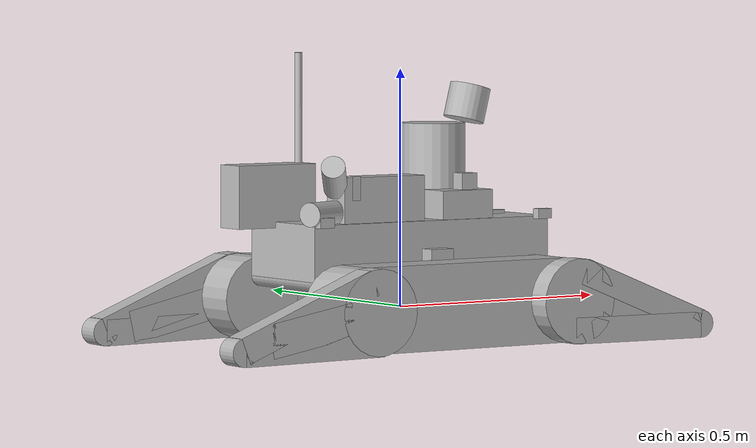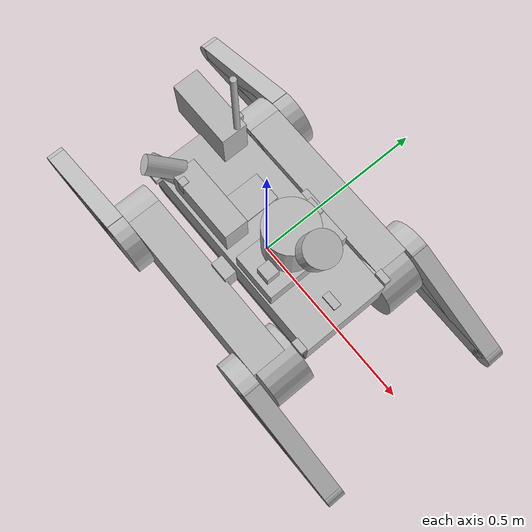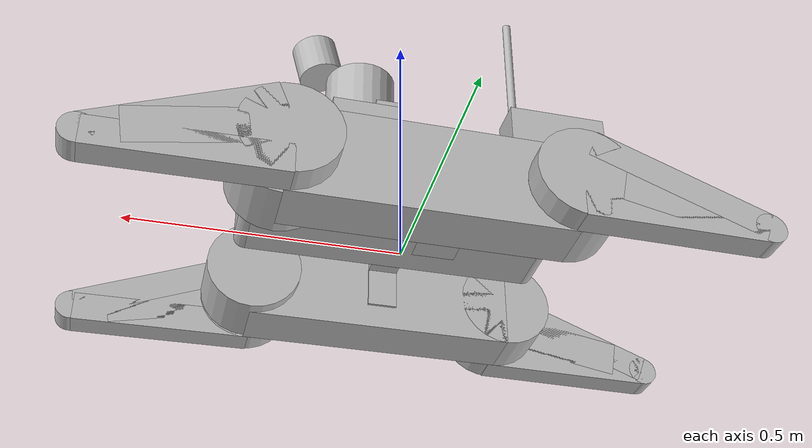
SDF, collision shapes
<?xml version='1.0' encoding='utf-8'?>
<sdf version="1.6">
  <model name="ctu_cras_norlab_absolem_sensor_config_1">
    <link name="base_link">
      <inertial>
        <pose>-0.033797 0.003861 0.164006 0 -0 0</pose>
        <mass>22.6142</mass>
        <inertia>
          <ixx>0.126621</ixx>
          <ixy>0.017313</ixy>
          <ixz>-0.0446051</ixz>
          <iyy>0.227125</iyy>
          <iyz>-0.00379556</iyz>
          <izz>0.161703</izz>
        </inertia>
      </inertial>
      <collision name="base_link_collision">
        <pose>0 0 0.129 0 -0 0</pose>
        <geometry>
          <box>
            <size>0.59 0.24093 0.117</size>
          </box>
        </geometry>
      </collision>
      <collision name="base_link_collision_1">
        <pose>0 0.135 0.09 0 -0 0</pose>
        <geometry>
          <box>
            <size>0.055 0.04 0.08</size>
          </box>
        </geometry>
      </collision>
      <collision name="base_link_collision_2">
        <pose>0 0.155 0.013 0 -0 0</pose>
        <geometry>
          <box>
            <size>0.055 0.02 0.075</size>
          </box>
        </geometry>
      </collision>
      <collision name="base_link_collision_3">
        <pose>0 -0.135 0.09 0 -0 0</pose>
        <geometry>
          <box>
            <size>0.055 0.04 0.08</size>
          </box>
        </geometry>
      </collision>
      <collision name="base_link_collision_4">
        <pose>0 -0.155 0.013 0 -0 0</pose>
        <geometry>
          <box>
            <size>0.055 0.02 0.075</size>
          </box>
        </geometry>
      </collision>
      <collision name="base_link_collision_5">
        <pose>0 0 0.059 0 -0 0</pose>
        <geometry>
          <box>
            <size>0.546 0.24093 0.022</size>
          </box>
        </geometry>
      </collision>
      <collision name="base_link_collision_6">
        <pose>0.273 0 0.07 1.5707963267948966 -0 0</pose>
        <geometry>
          <cylinder>
            <length>0.24093</length>
            <radius>0.022022</radius>
          </cylinder>
        </geometry>
      </collision>
      <collision name="base_link_collision_7">
        <pose>-0.273 0 0.07 1.5707963267948966 -0 0</pose>
        <geometry>
          <cylinder>
            <length>0.24093</length>
            <radius>0.022022</radius>
          </cylinder>
        </geometry>
      </collision>
      <collision name="base_link_fixed_joint_lump__antenna_collision_8">
        <pose>-0.19364 0.0789 0.1551 0 1.5707963267948966 0</pose>
        <geometry>
          <cylinder>
            <length>0.03718</length>
            <radius>0.008</radius>
          </cylinder>
        </geometry>
      </collision>
      <collision name="base_link_fixed_joint_lump__antenna_collision_9">
        <pose>-0.205 0.0789 0.34563 0 -0 0</pose>
        <geometry>
          <cylinder>
            <length>0.38107</length>
            <radius>0.008</radius>
          </cylinder>
        </geometry>
      </collision>
      <collision name="base_link_fixed_joint_lump__battery_collision_10">
        <pose>-0.079 0 0.12 0 1.5707963267948966 0</pose>
        <geometry>
          <box>
            <size>0.145 0.135 0.082</size>
          </box>
        </geometry>
      </collision>
      <collision name="base_link_fixed_joint_lump__mote_deployer_collision_11">
        <pose>-0.2895 0.063535 0.2405 0 0 -3.1415926535897931</pose>
        <geometry>
          <box>
            <size>0.189 0.072 0.131</size>
          </box>
        </geometry>
      </collision>
      <collision name="base_link_fixed_joint_lump__rear_sensor_item_collision_12">
        <pose>-0.185 -0.100465 0.235 0 -0 0</pose>
        <geometry>
          <box>
            <size>0.02 0.02 0.1</size>
          </box>
        </geometry>
      </collision>
      <collision name="base_link_fixed_joint_lump__mobilicom_collision_13">
        <pose>-0.114998 -0.077965 0.234837 1.5758 -0 3.1415926535897931</pose>
        <geometry>
          <box>
            <size>0.2 0.095 0.065</size>
          </box>
        </geometry>
      </collision>
      <collision name="base_link_fixed_joint_lump__mobilicom_antenna_l_collision_14">
        <pose>-0.241261 -0.112864 0.283984 1.06679 -0.002995 -0.641659</pose>
        <geometry>
          <cylinder>
            <length>0.1</length>
            <radius>0.025</radius>
          </cylinder>
        </geometry>
      </collision>
      <collision name="base_link_fixed_joint_lump__mobilicom_antenna_r_collision_15">
        <pose>-0.260464 -0.098887 0.209942 1.56871 -0.00455 -1.14166</pose>
        <geometry>
          <cylinder>
            <length>0.1</length>
            <radius>0.025</radius>
          </cylinder>
        </geometry>
      </collision>
      <collision name="base_link_fixed_joint_lump__top_box_collision_16">
        <pose>0.0915 0 0.2165 0 -0 0</pose>
        <geometry>
          <box>
            <size>0.127 0.231 0.06252</size>
          </box>
        </geometry>
      </collision>
      <collision name="base_link_fixed_joint_lump__top_box_collision_17">
        <pose>0.0515 0.09 0.254 0 -0 0</pose>
        <geometry>
          <box>
            <size>0.044 0.044 0.01303</size>
          </box>
        </geometry>
      </collision>
      <collision name="base_link_fixed_joint_lump__top_box_collision_18">
        <pose>0.10624 -0.08352 0.26496 0 -0 0</pose>
        <geometry>
          <box>
            <size>0.03732 0.03523 0.03489</size>
          </box>
        </geometry>
      </collision>
      <collision name="base_link_fixed_joint_lump__omnicam_collision_19">
        <pose>0.083191 0.00055 0.3172 0 0 -0.628319</pose>
        <geometry>
          <cylinder>
            <length>0.137</length>
            <radius>0.068</radius>
          </cylinder>
        </geometry>
      </collision>
      <visual name="base_link_visual">
        <geometry>
          <mesh>
            <uri>https://fuel.ignitionrobotics.org/1.0/OpenRobotics/models/CTU_CRAS_NORLAB_ABSOLEM_SENSOR_CONFIG_1/tip/files/meshes/body_2021.dae</uri>
          </mesh>
        </geometry>
      </visual>
      <visual name="base_link_visual_1">
        <pose>-0.18 0 0.185 1.5707963267948966 -1.5707963267948966 0</pose>
        <geometry>
          <mesh>
            <uri>https://fuel.ignitionrobotics.org/1.0/OpenRobotics/models/CTU_CRAS_NORLAB_ABSOLEM_SENSOR_CONFIG_1/tip/files/meshes/reflector.dae</uri>
          </mesh>
        </geometry>
      </visual>
      <visual name="base_link_fixed_joint_lump__antenna_visual_2">
        <pose>-0.175 0.0789 0.1551 0 -0 0</pose>
        <geometry>
          <mesh>
            <uri>https://fuel.ignitionrobotics.org/1.0/OpenRobotics/models/CTU_CRAS_NORLAB_ABSOLEM_SENSOR_CONFIG_1/tip/files/meshes/antenna.dae</uri>
          </mesh>
        </geometry>
      </visual>
      <visual name="base_link_fixed_joint_lump__battery_visual_3">
        <pose>-0.12 0 0.12 0 1.5707963267948966 0</pose>
        <geometry>
          <mesh>
            <uri>https://fuel.ignitionrobotics.org/1.0/OpenRobotics/models/CTU_CRAS_NORLAB_ABSOLEM_SENSOR_CONFIG_1/tip/files/meshes/battery.dae</uri>
          </mesh>
        </geometry>
      </visual>
      <visual name="base_link_fixed_joint_lump__mote_deployer_visual_4">
        <pose>-0.205 0.039535 0.175 0 0 -3.1415926535897931</pose>
        <geometry>
          <mesh>
            <uri>https://fuel.ignitionrobotics.org/1.0/OpenRobotics/models/CTU_CRAS_NORLAB_ABSOLEM_SENSOR_CONFIG_1/tip/files/meshes/mote_deployer.dae</uri>
          </mesh>
        </geometry>
      </visual>
      <visual name="base_link_fixed_joint_lump__rear_sensor_item_visual_5">
        <pose>-0.185 -0.100465 0.235 0 -0 0</pose>
        <geometry>
          <box>
            <size>0.02 0.02 0.1</size>
          </box>
        </geometry>
      </visual>
      <visual name="base_link_fixed_joint_lump__mobilicom_visual_6">
        <pose>-0.164999 -0.090462 0.2349 1.5758 -0 3.1415926535897931</pose>
        <geometry>
          <mesh>
            <uri>https://fuel.ignitionrobotics.org/1.0/OpenRobotics/models/CTU_CRAS_NORLAB_ABSOLEM_SENSOR_CONFIG_1/tip/files/meshes/mobilicom.dae</uri>
          </mesh>
        </geometry>
      </visual>
      <visual name="base_link_fixed_joint_lump__mobilicom_antenna_l_visual_7">
        <pose>-0.241261 -0.112864 0.283984 1.06679 -0.002995 -0.641659</pose>
        <geometry>
          <cylinder>
            <length>0.1</length>
            <radius>0.005</radius>
          </cylinder>
        </geometry>
      </visual>
      <visual name="base_link_fixed_joint_lump__mobilicom_antenna_r_visual_8">
        <pose>-0.260464 -0.098887 0.209942 1.56871 -0.00455 -1.14166</pose>
        <geometry>
          <cylinder>
            <length>0.1</length>
            <radius>0.005</radius>
          </cylinder>
        </geometry>
      </visual>
      <visual name="base_link_fixed_joint_lump__top_box_visual_9">
        <pose>0.0915 0 0.185 0 -0 0</pose>
        <geometry>
          <mesh>
            <uri>https://fuel.ignitionrobotics.org/1.0/OpenRobotics/models/CTU_CRAS_NORLAB_ABSOLEM_SENSOR_CONFIG_1/tip/files/meshes/top_box_2021_ladybug.dae</uri>
          </mesh>
        </geometry>
      </visual>
      <visual name="base_link_fixed_joint_lump__omnicam_visual_10">
        <pose>0.0865 0 0.3142 0 0 -0.628319</pose>
        <geometry>
          <mesh>
            <uri>https://fuel.ignitionrobotics.org/1.0/OpenRobotics/models/CTU_CRAS_NORLAB_ABSOLEM_SENSOR_CONFIG_1/tip/files/meshes/omnicam.dae</uri>
          </mesh>
        </geometry>
      </visual>
      <visual name="base_link_fixed_joint_lump__ouster_holder_visual_11">
        <pose>0.0865 0 0.3932 0 -0 0.628</pose>
        <geometry>
          <mesh>
            <uri>https://fuel.ignitionrobotics.org/1.0/OpenRobotics/models/CTU_CRAS_NORLAB_ABSOLEM_SENSOR_CONFIG_1/tip/files/meshes/ouster_holder_ladybug.dae</uri>
          </mesh>
        </geometry>
      </visual>
      <light name="light_left" type="spot">
        <pose>0 0.13 0.2 1.5707963267948966 1.5707963267948966 0</pose>
        <attenuation>
          <range>50</range>
          <linear>0</linear>
          <constant>0.1</constant>
          <quadratic>0.0025</quadratic>
        </attenuation>
        <diffuse>0.8 0.8 0.5 1</diffuse>
        <specular>0.8 0.8 0.5 1</specular>
        <spot>
          <inner_angle>2.8</inner_angle>
          <outer_angle>2.9</outer_angle>
          <falloff>1</falloff>
        </spot>
        <direction>1 0 0</direction>
      </light>
      <light name="light_right" type="spot">
        <pose>0 -0.13 0.2 -1.5707963267948966 1.5707963267948966 0</pose>
        <attenuation>
          <range>50</range>
          <linear>0</linear>
          <constant>0.1</constant>
          <quadratic>0.0025</quadratic>
        </attenuation>
        <diffuse>0.8 0.8 0.5 1</diffuse>
        <specular>0.8 0.8 0.5 1</specular>
        <spot>
          <inner_angle>2.8</inner_angle>
          <outer_angle>2.9</outer_angle>
          <falloff>1</falloff>
        </spot>
        <direction>1 0 0</direction>
      </light>
      <light name="light_rear" type="spot">
        <pose>-0.4 0 0.2 0 1.5707963267948966 0</pose>
        <attenuation>
          <range>30</range>
          <linear>0</linear>
          <constant>0.2</constant>
          <quadratic>0.0025</quadratic>
        </attenuation>
        <diffuse>0.8 0.8 0.5 1</diffuse>
        <specular>0.8 0.8 0.5 1</specular>
        <spot>
          <inner_angle>1.5</inner_angle>
          <outer_angle>1.8</outer_angle>
          <falloff>1</falloff>
        </spot>
        <direction>1 0 0</direction>
      </light>
      <light name="light_front" type="spot">
        <pose>0.4 0 0.2 3.1415926535897931 1.5707963267948966 0</pose>
        <attenuation>
          <range>30</range>
          <linear>0</linear>
          <constant>0.2</constant>
          <quadratic>0.0025</quadratic>
        </attenuation>
        <diffuse>0.8 0.8 0.5 1</diffuse>
        <specular>0.8 0.8 0.5 1</specular>
        <spot>
          <inner_angle>1.5</inner_angle>
          <outer_angle>1.8</outer_angle>
          <falloff>1</falloff>
        </spot>
        <direction>1 0 0</direction>
      </light>
      <light name="light_up" type="spot">
        <pose>-0.18 0 0.185 -3.1415926535897931 0 -3.1415926535897931</pose>
        <attenuation>
          <range>60</range>
          <linear>0</linear>
          <constant>0.1</constant>
          <quadratic>0.0025</quadratic>
        </attenuation>
        <diffuse>0.8 0.8 0.5 1</diffuse>
        <specular>0.8 0.8 0.5 1</specular>
        <spot>
          <inner_angle>1.0472</inner_angle>
          <outer_angle>1.5708</outer_angle>
          <falloff>1</falloff>
        </spot>
        <direction>0 0 -1</direction>
      </light>
      <self_collide>0</self_collide>
      <sensor name="imu" type="imu">
        <always_on>1</always_on>
        <update_rate>50</update_rate>
        <imu>
          <angular_velocity>
            <x>
              <noise type="gaussian">
                <mean>0</mean>
                <stddev>0.009</stddev>
                <bias_mean>0.00075</bias_mean>
                <bias_stddev>0.005</bias_stddev>
                <dynamic_bias_stddev>2e-05</dynamic_bias_stddev>
                <dynamic_bias_correlation_time>400</dynamic_bias_correlation_time>
                <precision>0.00025</precision>
              </noise>
            </x>
            <y>
              <noise type="gaussian">
                <mean>0</mean>
                <stddev>0.009</stddev>
                <bias_mean>0.00075</bias_mean>
                <bias_stddev>0.005</bias_stddev>
                <dynamic_bias_stddev>2e-05</dynamic_bias_stddev>
                <dynamic_bias_correlation_time>400</dynamic_bias_correlation_time>
                <precision>0.00025</precision>
              </noise>
            </y>
            <z>
              <noise type="gaussian">
                <mean>0</mean>
                <stddev>0.009</stddev>
                <bias_mean>0.00075</bias_mean>
                <bias_stddev>0.005</bias_stddev>
                <dynamic_bias_stddev>2e-05</dynamic_bias_stddev>
                <dynamic_bias_correlation_time>400</dynamic_bias_correlation_time>
                <precision>0.00025</precision>
              </noise>
            </z>
          </angular_velocity>
          <linear_acceleration>
            <x>
              <noise type="gaussian">
                <mean>0</mean>
                <stddev>0.021</stddev>
                <bias_mean>0.05</bias_mean>
                <bias_stddev>0.0075</bias_stddev>
                <dynamic_bias_stddev>0.000375</dynamic_bias_stddev>
                <dynamic_bias_correlation_time>175</dynamic_bias_correlation_time>
                <precision>0.005</precision>
              </noise>
            </x>
            <y>
              <noise type="gaussian">
                <mean>0</mean>
                <stddev>0.021</stddev>
                <bias_mean>0.05</bias_mean>
                <bias_stddev>0.0075</bias_stddev>
                <dynamic_bias_stddev>0.000375</dynamic_bias_stddev>
                <dynamic_bias_correlation_time>175</dynamic_bias_correlation_time>
                <precision>0.005</precision>
              </noise>
            </y>
            <z>
              <noise type="gaussian">
                <mean>0</mean>
                <stddev>0.021</stddev>
                <bias_mean>0.05</bias_mean>
                <bias_stddev>0.0075</bias_stddev>
                <dynamic_bias_stddev>0.000375</dynamic_bias_stddev>
                <dynamic_bias_correlation_time>175</dynamic_bias_correlation_time>
                <precision>0.005</precision>
              </noise>
            </z>
          </linear_acceleration>
          <enable_orientation>0</enable_orientation>
        </imu>
        <pose>0 0 0.15 -3.1415926535897931 -0 0</pose>
      </sensor>
      <sensor name="omnicam_sensor0" type="camera">
        <update_rate>6</update_rate>
        <camera name="camera_0">
          <horizontal_fov>1.36478</horizontal_fov>
          <image>
            <width>1232</width>
            <height>1616</height>
            <format>R8G8B8</format>
          </image>
          <clip>
            <near>0.02</near>
            <far>300</far>
          </clip>
          <noise>
            <type>gaussian</type>
            <mean>0</mean>
            <stddev>0.007</stddev>
          </noise>
          <distortion>
            <k1>-0.20571</k1>
            <k2>0.04103</k2>
            <k3>0</k3>
            <p1>-0.00101</p1>
            <p2>0.00098</p2>
          </distortion>
          <lens>
            <intrinsics>
              <fx>758.04</fx>
              <fy>761.624</fy>
              <cx>621.466</cx>
              <cy>756.864</cy>
              <s>1</s>
            </intrinsics>
            <type>stereographic</type>
            <scale_to_hfov>1</scale_to_hfov>
          </lens>
        </camera>
        <pose>0.119546 -0.026118 0.313841 -0.000948 -0.000784 -2.19802</pose>
      </sensor>
      <sensor name="omnicam_sensor1" type="camera">
        <update_rate>6</update_rate>
        <camera name="camera_1">
          <horizontal_fov>1.36574</horizontal_fov>
          <image>
            <width>1232</width>
            <height>1616</height>
            <format>R8G8B8</format>
          </image>
          <clip>
            <near>0.02</near>
            <far>300</far>
          </clip>
          <noise>
            <type>gaussian</type>
            <mean>0</mean>
            <stddev>0.007</stddev>
          </noise>
          <distortion>
            <k1>-0.19931</k1>
            <k2>0.03549</k2>
            <k3>0</k3>
            <p1>5e-05</p1>
            <p2>-0.00053</p2>
          </distortion>
          <lens>
            <intrinsics>
              <fx>757.299</fx>
              <fy>757.801</fy>
              <cx>594.19</cx>
              <cy>779.434</cy>
              <s>1</s>
            </intrinsics>
            <type>stereographic</type>
            <scale_to_hfov>1</scale_to_hfov>
          </lens>
        </camera>
        <pose>0.072192 -0.039206 0.314114 -0.001069 0.000853 2.82791</pose>
      </sensor>
      <sensor name="omnicam_sensor2" type="camera">
        <update_rate>6</update_rate>
        <camera name="camera_2">
          <horizontal_fov>1.36565</horizontal_fov>
          <image>
            <width>1232</width>
            <height>1616</height>
            <format>R8G8B8</format>
          </image>
          <clip>
            <near>0.02</near>
            <far>300</far>
          </clip>
          <noise>
            <type>gaussian</type>
            <mean>0</mean>
            <stddev>0.007</stddev>
          </noise>
          <distortion>
            <k1>-0.19722</k1>
            <k2>0.03442</k2>
            <k3>0</k3>
            <p1>0.00013</p1>
            <p2>-0.00035</p2>
          </distortion>
          <lens>
            <intrinsics>
              <fx>757.367</fx>
              <fy>755.079</fy>
              <cx>632.96</cx>
              <cy>740.558</cy>
              <s>1</s>
            </intrinsics>
            <type>stereographic</type>
            <scale_to_hfov>1</scale_to_hfov>
          </lens>
        </camera>
        <pose>0.04485 0.001971 0.314721 -0.001705 0.00415 1.56975</pose>
      </sensor>
      <sensor name="omnicam_sensor3" type="camera">
        <update_rate>6</update_rate>
        <camera name="camera_3">
          <horizontal_fov>1.35821</horizontal_fov>
          <image>
            <width>1232</width>
            <height>1616</height>
            <format>R8G8B8</format>
          </image>
          <clip>
            <near>0.02</near>
            <far>300</far>
          </clip>
          <noise>
            <type>gaussian</type>
            <mean>0</mean>
            <stddev>0.007</stddev>
          </noise>
          <distortion>
            <k1>-0.20395</k1>
            <k2>0.03534</k2>
            <k3>0</k3>
            <p1>0.0003</p1>
            <p2>-0.00066</p2>
          </distortion>
          <lens>
            <intrinsics>
              <fx>763.152</fx>
              <fy>763.185</fy>
              <cx>606.706</cx>
              <cy>785.217</cy>
              <s>1</s>
            </intrinsics>
            <type>stereographic</type>
            <scale_to_hfov>1</scale_to_hfov>
          </lens>
        </camera>
        <pose>0.074761 0.040332 0.314417 -0.000579 0.005611 0.313689</pose>
      </sensor>
      <sensor name="omnicam_sensor4" type="camera">
        <update_rate>6</update_rate>
        <camera name="camera_4">
          <horizontal_fov>1.37789</horizontal_fov>
          <image>
            <width>1232</width>
            <height>1616</height>
            <format>R8G8B8</format>
          </image>
          <clip>
            <near>0.02</near>
            <far>300</far>
          </clip>
          <noise>
            <type>gaussian</type>
            <mean>0</mean>
            <stddev>0.007</stddev>
          </noise>
          <distortion>
            <k1>-0.19889</k1>
            <k2>0.03244</k2>
            <k3>0</k3>
            <p1>-0.00039</p1>
            <p2>-0.00126</p2>
          </distortion>
          <lens>
            <intrinsics>
              <fx>747.97</fx>
              <fy>744.851</fy>
              <cx>612.798</cx>
              <cy>772.008</cy>
              <s>1</s>
            </intrinsics>
            <type>stereographic</type>
            <scale_to_hfov>1</scale_to_hfov>
          </lens>
        </camera>
        <pose>0.121151 0.02302 0.313899 -0.010815 0.001034 -0.943109</pose>
      </sensor>
      <sensor name="omnicam_sensor5" type="camera">
        <update_rate>6</update_rate>
        <camera name="camera_5">
          <horizontal_fov>1.36869</horizontal_fov>
          <image>
            <width>1232</width>
            <height>1616</height>
            <format>R8G8B8</format>
          </image>
          <clip>
            <near>0.02</near>
            <far>300</far>
          </clip>
          <noise>
            <type>gaussian</type>
            <mean>0</mean>
            <stddev>0.007</stddev>
          </noise>
          <distortion>
            <k1>-0.21309</k1>
            <k2>0.03984</k2>
            <k3>0</k3>
            <p1>-0.00011</p1>
            <p2>-0.00017</p2>
          </distortion>
          <lens>
            <intrinsics>
              <fx>755.019</fx>
              <fy>754.96</fy>
              <cx>602.194</cx>
              <cy>802.92</cy>
              <s>1</s>
            </intrinsics>
            <type>stereographic</type>
            <scale_to_hfov>1</scale_to_hfov>
          </lens>
        </camera>
        <pose>0.086283 -0.000982 0.376328 3.1415926535897931 -1.5707963267948966 0.945143</pose>
      </sensor>
    </link>
    <link name="left_track">
      <pose>0 0.1985 0 0 -0 0</pose>
      <inertial>
        <pose>0 0 0.0141 0 -0 0</pose>
        <mass>6.06</mass>
        <inertia>
          <ixx>0.002731</ixx>
          <ixy>0</ixy>
          <ixz>0</ixz>
          <iyy>0.032554</iyy>
          <iyz>1.5e-05</iyz>
          <izz>0.031391</izz>
        </inertia>
      </inertial>
      <collision name="left_track_collision">
        <pose>0 0 0.01855 1.5707963267948966 -0 1.5707963267948966</pose>
        <geometry>
          <box>
            <size>0.097 0.178 0.5</size>
          </box>
        </geometry>
        <surface>
          <friction>
            <ode>
              <mu>10</mu>
              <mu2>150</mu2>
              <fdir1>0 0 1</fdir1>
            </ode>
          </friction>
        </surface>
      </collision>
      <collision name="left_track_collision_1">
        <pose>0.25 -0.015 0.01855 1.5707963267948966 -0 0</pose>
        <geometry>
          <cylinder>
            <length>0.112</length>
            <radius>0.089</radius>
          </cylinder>
        </geometry>
        <surface>
          <friction>
            <ode>
              <mu>10</mu>
              <mu2>150</mu2>
              <fdir1>0 0 1</fdir1>
            </ode>
          </friction>
        </surface>
      </collision>
      <collision name="left_track_collision_2">
        <pose>-0.25 0 0.01855 1.5707963267948966 -0 0</pose>
        <geometry>
          <cylinder>
            <length>0.097</length>
            <radius>0.089</radius>
          </cylinder>
        </geometry>
        <surface>
          <friction>
            <ode>
              <mu>10</mu>
              <mu2>150</mu2>
              <fdir1>0 0 1</fdir1>
            </ode>
          </friction>
        </surface>
      </collision>
      <visual name="left_track_visual">
        <pose>0 0 -0.0705 1.5707963267948966 -0 1.5707963267948966</pose>
        <geometry>
          <mesh>
            <uri>https://fuel.ignitionrobotics.org/1.0/OpenRobotics/models/CTU_CRAS_NORLAB_ABSOLEM_SENSOR_CONFIG_1/tip/files/meshes/bogie.dae</uri>
          </mesh>
        </geometry>
      </visual>
    </link>
    <joint name="left_track_j" type="revolute">
      <child>left_track</child>
      <parent>base_link</parent>
      <axis>
        <xyz>0 1 0</xyz>
        <limit>
          <lower>0</lower>
          <upper>0</upper>
          <effort>0</effort>
          <velocity>4</velocity>
        </limit>
        <dynamics>
          <spring_reference>0</spring_reference>
          <spring_stiffness>0</spring_stiffness>
        </dynamics>
        <use_parent_model_frame>0</use_parent_model_frame>
      </axis>
      <physics>
        <ode>
          <limit>
            <cfm>0</cfm>
            <erp>0.2</erp>
          </limit>
        </ode>
      </physics>
      <physics>
        <ode>
          <implicit_spring_damper>1</implicit_spring_damper>
          <cfm>0</cfm>
          <erp>0.95</erp>
        </ode>
      </physics>
    </joint>
    <link name="front_left_flipper">
      <pose>0.25 0.272 0.0195 0 0.193732 0</pose>
      <inertial>
        <pose>0.08 0 0 0 -0 0</pose>
        <mass>0.75</mass>
        <inertia>
          <ixx>0.0017491</ixx>
          <ixy>2.8512e-07</ixy>
          <ixz>0.0018277</ixz>
          <iyy>0.012277</iyy>
          <iyz>-3.6288e-07</iyz>
          <izz>0.010941</izz>
        </inertia>
      </inertial>
      <collision name="front_left_flipper_collision_large_wheel_collision">
        <pose>0 0 0 1.5707963267948966 -0 0</pose>
        <geometry>
          <cylinder>
            <length>0.04981</length>
            <radius>0.089</radius>
          </cylinder>
        </geometry>
        <surface>
          <friction>
            <ode>
              <mu>10</mu>
              <mu2>150</mu2>
              <fdir1>0 0 1</fdir1>
            </ode>
          </friction>
        </surface>
      </collision>
      <collision name="front_left_flipper_collision_small_wheel_collision_1">
        <pose>0.33 0 0 1.5707963267948966 -0 0</pose>
        <geometry>
          <cylinder>
            <length>0.04981</length>
            <radius>0.029</radius>
          </cylinder>
        </geometry>
        <surface>
          <friction>
            <ode>
              <mu>10</mu>
              <mu2>150</mu2>
              <fdir1>0 0 1</fdir1>
            </ode>
          </friction>
        </surface>
      </collision>
      <collision name="front_left_flipper_collision_top_bar_collision_2">
        <pose>0.165 0 0.0325 0 0.184162 0</pose>
        <geometry>
          <box>
            <size>0.33 0.04981 0.055</size>
          </box>
        </geometry>
        <surface>
          <friction>
            <ode>
              <mu>10</mu>
              <mu2>150</mu2>
              <fdir1>0 0 1</fdir1>
            </ode>
          </friction>
        </surface>
      </collision>
      <collision name="front_left_flipper_collision_bottom_bar_collision_3">
        <pose>0.165 0 -0.0325 0 -0.184162 0</pose>
        <geometry>
          <box>
            <size>0.33 0.04981 0.055</size>
          </box>
        </geometry>
        <surface>
          <friction>
            <ode>
              <mu>10</mu>
              <mu2>150</mu2>
              <fdir1>0 0 1</fdir1>
            </ode>
          </friction>
        </surface>
      </collision>
      <collision name="front_left_flipper_collision_middle_bar_collision_4">
        <pose>0.166 0 0.004 0 -0.02 0</pose>
        <geometry>
          <box>
            <size>0.2 0.04981 0.07</size>
          </box>
        </geometry>
        <surface>
          <friction>
            <ode>
              <mu>10</mu>
              <mu2>150</mu2>
              <fdir1>0 0 1</fdir1>
            </ode>
          </friction>
        </surface>
      </collision>
      <visual name="front_left_flipper_visual">
        <pose>0 0 0 -2.95743 -0 1.5707963267948966</pose>
        <geometry>
          <mesh>
            <uri>https://fuel.ignitionrobotics.org/1.0/OpenRobotics/models/CTU_CRAS_NORLAB_ABSOLEM_SENSOR_CONFIG_1/tip/files/meshes/flipper.dae</uri>
          </mesh>
        </geometry>
      </visual>
    </link>
    <joint name="front_left_flipper_j" type="revolute">
      <child>front_left_flipper</child>
      <parent>left_track</parent>
      <axis>
        <xyz>0 1 0</xyz>
        <limit>
          <lower>-1e+16</lower>
          <upper>1e+16</upper>
          <effort>20</effort>
          <velocity>0.785398</velocity>
        </limit>
        <dynamics>
          <spring_reference>0</spring_reference>
          <spring_stiffness>0</spring_stiffness>
        </dynamics>
        <use_parent_model_frame>0</use_parent_model_frame>
      </axis>
      <physics>
        <ode>
          <implicit_spring_damper>1</implicit_spring_damper>
          <cfm_damping>1</cfm_damping>
          <limit>
            <cfm>0</cfm>
            <erp>0.2</erp>
          </limit>
        </ode>
      </physics>
    </joint>
    <link name="rear_left_flipper">
      <pose>-0.25 0.272 0.0195 3.1415926535897931 0.193732 3.1415926535897931</pose>
      <inertial>
        <pose>0.08 0 0 0 -0 0</pose>
        <mass>0.75</mass>
        <inertia>
          <ixx>0.0017491</ixx>
          <ixy>2.8512e-07</ixy>
          <ixz>0.0018277</ixz>
          <iyy>0.012277</iyy>
          <iyz>-3.6288e-07</iyz>
          <izz>0.010941</izz>
        </inertia>
      </inertial>
      <collision name="rear_left_flipper_collision_large_wheel_collision">
        <pose>0 0 0 1.5707963267948966 -0 0</pose>
        <geometry>
          <cylinder>
            <length>0.04981</length>
            <radius>0.089</radius>
          </cylinder>
        </geometry>
        <surface>
          <friction>
            <ode>
              <mu>10</mu>
              <mu2>150</mu2>
              <fdir1>0 0 1</fdir1>
            </ode>
          </friction>
        </surface>
      </collision>
      <collision name="rear_left_flipper_collision_small_wheel_collision_1">
        <pose>0.33 0 0 1.5707963267948966 -0 0</pose>
        <geometry>
          <cylinder>
            <length>0.04981</length>
            <radius>0.029</radius>
          </cylinder>
        </geometry>
        <surface>
          <friction>
            <ode>
              <mu>10</mu>
              <mu2>150</mu2>
              <fdir1>0 0 1</fdir1>
            </ode>
          </friction>
        </surface>
      </collision>
      <collision name="rear_left_flipper_collision_top_bar_collision_2">
        <pose>0.165 0 0.0325 0 0.184162 0</pose>
        <geometry>
          <box>
            <size>0.33 0.04981 0.055</size>
          </box>
        </geometry>
        <surface>
          <friction>
            <ode>
              <mu>10</mu>
              <mu2>150</mu2>
              <fdir1>0 0 1</fdir1>
            </ode>
          </friction>
        </surface>
      </collision>
      <collision name="rear_left_flipper_collision_bottom_bar_collision_3">
        <pose>0.165 0 -0.0325 0 -0.184162 0</pose>
        <geometry>
          <box>
            <size>0.33 0.04981 0.055</size>
          </box>
        </geometry>
        <surface>
          <friction>
            <ode>
              <mu>10</mu>
              <mu2>150</mu2>
              <fdir1>0 0 1</fdir1>
            </ode>
          </friction>
        </surface>
      </collision>
      <collision name="rear_left_flipper_collision_middle_bar_collision_4">
        <pose>0.166 0 0.004 0 -0.02 0</pose>
        <geometry>
          <box>
            <size>0.2 0.04981 0.07</size>
          </box>
        </geometry>
        <surface>
          <friction>
            <ode>
              <mu>10</mu>
              <mu2>150</mu2>
              <fdir1>0 0 1</fdir1>
            </ode>
          </friction>
        </surface>
      </collision>
      <visual name="rear_left_flipper_visual">
        <pose>0 0 0 -2.95743 -0 1.5707963267948966</pose>
        <geometry>
          <mesh>
            <uri>https://fuel.ignitionrobotics.org/1.0/OpenRobotics/models/CTU_CRAS_NORLAB_ABSOLEM_SENSOR_CONFIG_1/tip/files/meshes/flipper.dae</uri>
          </mesh>
        </geometry>
      </visual>
    </link>
    <joint name="rear_left_flipper_j" type="revolute">
      <child>rear_left_flipper</child>
      <parent>left_track</parent>
      <axis>
        <xyz>0 1 0</xyz>
        <limit>
          <lower>-1e+16</lower>
          <upper>1e+16</upper>
          <effort>20</effort>
          <velocity>0.785398</velocity>
        </limit>
        <dynamics>
          <spring_reference>0</spring_reference>
          <spring_stiffness>0</spring_stiffness>
        </dynamics>
        <use_parent_model_frame>0</use_parent_model_frame>
      </axis>
      <physics>
        <ode>
          <implicit_spring_damper>1</implicit_spring_damper>
          <cfm_damping>1</cfm_damping>
          <limit>
            <cfm>0</cfm>
            <erp>0.2</erp>
          </limit>
        </ode>
      </physics>
    </joint>
    <link name="cliff_sensor_0">
      <pose>0.275 0.119535 0.2035 -1.5707963267948966 1.5707963267948966 0</pose>
      <inertial>
        <pose>0.0105 0 0.00925 0 -0 0</pose>
        <mass>0.012</mass>
        <inertia>
          <ixx>1.56725e-06</ixx>
          <ixy>0</ixy>
          <ixz>0</ixz>
          <iyy>7.8325e-07</iyy>
          <iyz>0</iyz>
          <izz>1.666e-06</izz>
        </inertia>
      </inertial>
      <collision name="cliff_sensor_0_collision">
        <pose>0.0105 0 0.00925 0 -0 0</pose>
        <geometry>
          <box>
            <size>0.021 0.035 0.0185</size>
          </box>
        </geometry>
      </collision>
      <visual name="cliff_sensor_0_visual">
        <geometry>
          <mesh>
            <uri>https://fuel.ignitionrobotics.org/1.0/OpenRobotics/models/CTU_CRAS_NORLAB_ABSOLEM_SENSOR_CONFIG_1/tip/files/meshes/tfmini_plus_lidar.dae</uri>
          </mesh>
        </geometry>
      </visual>
      <sensor name="laser" type="gpu_lidar">
        <pose>0.021 0 0.00925 0 -0 0</pose>
        <update_rate>10</update_rate>
        <visualize>0</visualize>
        <always_on>1</always_on>
        <lidar>
          <scan>
            <horizontal>
              <samples>3</samples>
              <resolution>1</resolution>
              <min_angle>-0.0314159</min_angle>
              <max_angle>0.0314159</max_angle>
            </horizontal>
            <vertical>
              <samples>3</samples>
              <resolution>1</resolution>
              <min_angle>-0.0314159</min_angle>
              <max_angle>0.0314159</max_angle>
            </vertical>
          </scan>
          <range>
            <min>0.1</min>
            <max>12</max>
            <resolution>0.01</resolution>
          </range>
          <noise>
            <type>gaussian</type>
            <mean>0</mean>
            <stddev>0.015</stddev>
          </noise>
        </lidar>
      </sensor>
    </link>
    <joint name="cliff_sensor_0_j" type="fixed">
      <child>cliff_sensor_0</child>
      <parent>base_link</parent>
      <axis>
        <dynamics>
          <spring_reference>0</spring_reference>
          <spring_stiffness>0</spring_stiffness>
        </dynamics>
        <xyz>0 0 1</xyz>
        <use_parent_model_frame>0</use_parent_model_frame>
        <limit>
          <lower>-1e+16</lower>
          <upper>1e+16</upper>
        </limit>
      </axis>
      <physics>
        <ode>
          <limit>
            <cfm>0</cfm>
            <erp>0.2</erp>
          </limit>
        </ode>
      </physics>
    </joint>
    <link name="cliff_sensor_1">
      <pose>0.275 -0.120465 0.2035 1.5707963267948966 1.5707963267948966 0</pose>
      <inertial>
        <pose>0.0105 0 0.00925 0 -0 0</pose>
        <mass>0.012</mass>
        <inertia>
          <ixx>1.56725e-06</ixx>
          <ixy>0</ixy>
          <ixz>0</ixz>
          <iyy>7.8325e-07</iyy>
          <iyz>0</iyz>
          <izz>1.666e-06</izz>
        </inertia>
      </inertial>
      <collision name="cliff_sensor_1_collision">
        <pose>0.0105 0 0.00925 0 -0 0</pose>
        <geometry>
          <box>
            <size>0.021 0.035 0.0185</size>
          </box>
        </geometry>
      </collision>
      <visual name="cliff_sensor_1_visual">
        <geometry>
          <mesh>
            <uri>https://fuel.ignitionrobotics.org/1.0/OpenRobotics/models/CTU_CRAS_NORLAB_ABSOLEM_SENSOR_CONFIG_1/tip/files/meshes/tfmini_plus_lidar.dae</uri>
          </mesh>
        </geometry>
      </visual>
      <sensor name="laser" type="gpu_lidar">
        <pose>0.021 0 0.00925 0 -0 0</pose>
        <update_rate>10</update_rate>
        <visualize>0</visualize>
        <always_on>1</always_on>
        <lidar>
          <scan>
            <horizontal>
              <samples>3</samples>
              <resolution>1</resolution>
              <min_angle>-0.0314159</min_angle>
              <max_angle>0.0314159</max_angle>
            </horizontal>
            <vertical>
              <samples>3</samples>
              <resolution>1</resolution>
              <min_angle>-0.0314159</min_angle>
              <max_angle>0.0314159</max_angle>
            </vertical>
          </scan>
          <range>
            <min>0.1</min>
            <max>12</max>
            <resolution>0.01</resolution>
          </range>
          <noise>
            <type>gaussian</type>
            <mean>0</mean>
            <stddev>0.015</stddev>
          </noise>
        </lidar>
      </sensor>
    </link>
    <joint name="cliff_sensor_1_j" type="fixed">
      <child>cliff_sensor_1</child>
      <parent>base_link</parent>
      <axis>
        <dynamics>
          <spring_reference>0</spring_reference>
          <spring_stiffness>0</spring_stiffness>
        </dynamics>
        <xyz>0 0 1</xyz>
        <use_parent_model_frame>0</use_parent_model_frame>
        <limit>
          <lower>-1e+16</lower>
          <upper>1e+16</upper>
        </limit>
      </axis>
      <physics>
        <ode>
          <limit>
            <cfm>0</cfm>
            <erp>0.2</erp>
          </limit>
        </ode>
      </physics>
    </joint>
    <link name="cliff_sensor_2">
      <pose>-0.275 0.119535 0.2035 -1.5707963267948966 1.5707963267948966 0</pose>
      <inertial>
        <pose>0.0105 0 0.00925 0 -0 0</pose>
        <mass>0.012</mass>
        <inertia>
          <ixx>1.56725e-06</ixx>
          <ixy>0</ixy>
          <ixz>0</ixz>
          <iyy>7.8325e-07</iyy>
          <iyz>0</iyz>
          <izz>1.666e-06</izz>
        </inertia>
      </inertial>
      <collision name="cliff_sensor_2_collision">
        <pose>0.0105 0 0.00925 0 -0 0</pose>
        <geometry>
          <box>
            <size>0.021 0.035 0.0185</size>
          </box>
        </geometry>
      </collision>
      <visual name="cliff_sensor_2_visual">
        <geometry>
          <mesh>
            <uri>https://fuel.ignitionrobotics.org/1.0/OpenRobotics/models/CTU_CRAS_NORLAB_ABSOLEM_SENSOR_CONFIG_1/tip/files/meshes/tfmini_plus_lidar.dae</uri>
          </mesh>
        </geometry>
      </visual>
      <sensor name="laser" type="gpu_lidar">
        <pose>0.021 0 0.00925 0 -0 0</pose>
        <update_rate>10</update_rate>
        <visualize>0</visualize>
        <always_on>1</always_on>
        <lidar>
          <scan>
            <horizontal>
              <samples>3</samples>
              <resolution>1</resolution>
              <min_angle>-0.0314159</min_angle>
              <max_angle>0.0314159</max_angle>
            </horizontal>
            <vertical>
              <samples>3</samples>
              <resolution>1</resolution>
              <min_angle>-0.0314159</min_angle>
              <max_angle>0.0314159</max_angle>
            </vertical>
          </scan>
          <range>
            <min>0.1</min>
            <max>12</max>
            <resolution>0.01</resolution>
          </range>
          <noise>
            <type>gaussian</type>
            <mean>0</mean>
            <stddev>0.015</stddev>
          </noise>
        </lidar>
      </sensor>
    </link>
    <joint name="cliff_sensor_2_j" type="fixed">
      <child>cliff_sensor_2</child>
      <parent>base_link</parent>
      <axis>
        <dynamics>
          <spring_reference>0</spring_reference>
          <spring_stiffness>0</spring_stiffness>
        </dynamics>
        <xyz>0 0 1</xyz>
        <use_parent_model_frame>0</use_parent_model_frame>
        <limit>
          <lower>-1e+16</lower>
          <upper>1e+16</upper>
        </limit>
      </axis>
      <physics>
        <ode>
          <limit>
            <cfm>0</cfm>
            <erp>0.2</erp>
          </limit>
        </ode>
      </physics>
    </joint>
    <link name="cliff_sensor_3">
      <pose>-0.275 -0.120465 0.2035 1.5707963267948966 1.5707963267948966 0</pose>
      <inertial>
        <pose>0.0105 0 0.00925 0 -0 0</pose>
        <mass>0.012</mass>
        <inertia>
          <ixx>1.56725e-06</ixx>
          <ixy>0</ixy>
          <ixz>0</ixz>
          <iyy>7.8325e-07</iyy>
          <iyz>0</iyz>
          <izz>1.666e-06</izz>
        </inertia>
      </inertial>
      <collision name="cliff_sensor_3_collision">
        <pose>0.0105 0 0.00925 0 -0 0</pose>
        <geometry>
          <box>
            <size>0.021 0.035 0.0185</size>
          </box>
        </geometry>
      </collision>
      <visual name="cliff_sensor_3_visual">
        <geometry>
          <mesh>
            <uri>https://fuel.ignitionrobotics.org/1.0/OpenRobotics/models/CTU_CRAS_NORLAB_ABSOLEM_SENSOR_CONFIG_1/tip/files/meshes/tfmini_plus_lidar.dae</uri>
          </mesh>
        </geometry>
      </visual>
      <sensor name="laser" type="gpu_lidar">
        <pose>0.021 0 0.00925 0 -0 0</pose>
        <update_rate>10</update_rate>
        <visualize>0</visualize>
        <always_on>1</always_on>
        <lidar>
          <scan>
            <horizontal>
              <samples>3</samples>
              <resolution>1</resolution>
              <min_angle>-0.0314159</min_angle>
              <max_angle>0.0314159</max_angle>
            </horizontal>
            <vertical>
              <samples>3</samples>
              <resolution>1</resolution>
              <min_angle>-0.0314159</min_angle>
              <max_angle>0.0314159</max_angle>
            </vertical>
          </scan>
          <range>
            <min>0.1</min>
            <max>12</max>
            <resolution>0.01</resolution>
          </range>
          <noise>
            <type>gaussian</type>
            <mean>0</mean>
            <stddev>0.015</stddev>
          </noise>
        </lidar>
      </sensor>
    </link>
    <joint name="cliff_sensor_3_j" type="fixed">
      <child>cliff_sensor_3</child>
      <parent>base_link</parent>
      <axis>
        <dynamics>
          <spring_reference>0</spring_reference>
          <spring_stiffness>0</spring_stiffness>
        </dynamics>
        <xyz>0 0 1</xyz>
        <use_parent_model_frame>0</use_parent_model_frame>
        <limit>
          <lower>-1e+16</lower>
          <upper>1e+16</upper>
        </limit>
      </axis>
      <physics>
        <ode>
          <limit>
            <cfm>0</cfm>
            <erp>0.2</erp>
          </limit>
        </ode>
      </physics>
    </joint>
    <link name="thermocam">
      <pose>0.225 -0.000465 0.185 0 -0 0</pose>
      <inertial>
        <pose>0.0155 0 0 0 -0 0</pose>
        <mass>0.024</mass>
        <inertia>
          <ixx>1.764e-06</ixx>
          <ixy>0</ixy>
          <ixz>0</ixz>
          <iyy>4.58e-06</iyy>
          <iyz>0</iyz>
          <izz>4.58e-06</izz>
        </inertia>
      </inertial>
      <collision name="thermocam_collision">
        <pose>0.0155 0 0 0 -0 0</pose>
        <geometry>
          <box>
            <size>0.043 0.021 0.021</size>
          </box>
        </geometry>
      </collision>
      <visual name="thermocam_visual">
        <pose>0 0 0.0105 0 -0 0</pose>
        <geometry>
          <mesh>
            <uri>https://fuel.ignitionrobotics.org/1.0/OpenRobotics/models/CTU_CRAS_NORLAB_ABSOLEM_SENSOR_CONFIG_1/tip/files/meshes/flir_boson.dae</uri>
          </mesh>
        </geometry>
      </visual>
      <sensor name="thermal_camera" type="thermal_camera">
        <pose>0.03 0 0 0 -0 0</pose>
        <always_on>1</always_on>
        <update_rate>8.6</update_rate>
        <visualize>0</visualize>
        <camera name="thermal_camera">
          <horizontal_fov>1.6057</horizontal_fov>
          <lens>
            <intrinsics>
              <fx>154.51</fx>
              <fy>154.51</fy>
              <cx>160.5</cx>
              <cy>128.5</cy>
              <s>0</s>
            </intrinsics>
            <type>stereographic</type>
            <scale_to_hfov>1</scale_to_hfov>
          </lens>
          <image>
            <width>320</width>
            <height>256</height>
            <format>L8</format>
          </image>
          <clip>
            <near>0.6</near>
            <far>50</far>
          </clip>
        </camera>
        <plugin name="ignition::gazebo::systems::ThermalSensor" filename="ignition-gazebo-thermal-sensor-system">
          <min_temp>253.15</min_temp>
          <max_temp>673.15</max_temp>
          <resolution>1.6</resolution>
        </plugin>
      </sensor>
    </link>
    <joint name="thermocam_j" type="fixed">
      <child>thermocam</child>
      <parent>base_link</parent>
      <axis>
        <dynamics>
          <spring_reference>0</spring_reference>
          <spring_stiffness>0</spring_stiffness>
        </dynamics>
        <xyz>0 0 1</xyz>
        <use_parent_model_frame>0</use_parent_model_frame>
        <limit>
          <lower>-1e+16</lower>
          <upper>1e+16</upper>
        </limit>
      </axis>
      <physics>
        <ode>
          <limit>
            <cfm>0</cfm>
            <erp>0.2</erp>
          </limit>
        </ode>
      </physics>
    </joint>
    <link name="laser">
      <pose>0.1615 0 0.39 0 0.25 0</pose>
      <inertial>
        <pose>0 0 0.03675 0 -0 0</pose>
        <mass>0.5</mass>
        <inertia>
          <ixx>0.000461625</ixx>
          <ixy>0</ixy>
          <ixz>0</ixz>
          <iyy>0.000461625</iyy>
          <iyz>0</iyz>
          <izz>0.000473063</izz>
        </inertia>
      </inertial>
      <collision name="laser_collision">
        <pose>0 0 0.03675 0 -0 0</pose>
        <geometry>
          <cylinder>
            <length>0.0735</length>
            <radius>0.0435</radius>
          </cylinder>
        </geometry>
      </collision>
      <visual name="laser_visual">
        <geometry>
          <mesh>
            <uri>https://fuel.ignitionrobotics.org/1.0/OpenRobotics/models/CTU_CRAS_NORLAB_ABSOLEM_SENSOR_CONFIG_1/tip/files/meshes/ouster-os0.dae</uri>
          </mesh>
        </geometry>
      </visual>
      <sensor name="laser" type="gpu_lidar">
        <pose>0 0 0.035925 0 -0 0</pose>
        <update_rate>10</update_rate>
        <visualize>0</visualize>
        <always_on>1</always_on>
        <lidar>
          <scan>
            <horizontal>
              <samples>2048</samples>
              <resolution>1</resolution>
              <min_angle>-3.1459</min_angle>
              <max_angle>3.1459</max_angle>
            </horizontal>
            <vertical>
              <samples>128</samples>
              <resolution>1</resolution>
              <min_angle>-0.785398</min_angle>
              <max_angle>0.785398</max_angle>
            </vertical>
          </scan>
          <range>
            <min>0.1</min>
            <max>50</max>
            <resolution>0.01</resolution>
          </range>
          <noise>
            <type>gaussian</type>
            <mean>0</mean>
            <stddev>0.01</stddev>
          </noise>
        </lidar>
      </sensor>
    </link>
    <joint name="laser_j" type="fixed">
      <child>laser</child>
      <parent>base_link</parent>
      <axis>
        <dynamics>
          <spring_reference>0</spring_reference>
          <spring_stiffness>0</spring_stiffness>
        </dynamics>
        <xyz>0 0 1</xyz>
        <use_parent_model_frame>0</use_parent_model_frame>
        <limit>
          <lower>-1e+16</lower>
          <upper>1e+16</upper>
        </limit>
      </axis>
      <physics>
        <ode>
          <limit>
            <cfm>0</cfm>
            <erp>0.2</erp>
          </limit>
        </ode>
      </physics>
    </joint>
    <link name="right_track">
      <pose>0 -0.1985 0 0 -0 0</pose>
      <inertial>
        <pose>0 0 0.0141 0 -0 0</pose>
        <mass>6.06</mass>
        <inertia>
          <ixx>0.002731</ixx>
          <ixy>0</ixy>
          <ixz>0</ixz>
          <iyy>0.032554</iyy>
          <iyz>1.5e-05</iyz>
          <izz>0.031391</izz>
        </inertia>
      </inertial>
      <collision name="right_track_collision">
        <pose>0 0 0.01855 1.5707963267948966 -0 1.5707963267948966</pose>
        <geometry>
          <box>
            <size>0.097 0.178 0.5</size>
          </box>
        </geometry>
        <surface>
          <friction>
            <ode>
              <mu>10</mu>
              <mu2>150</mu2>
              <fdir1>0 0 1</fdir1>
            </ode>
          </friction>
        </surface>
      </collision>
      <collision name="right_track_collision_1">
        <pose>0.25 0.015 0.01855 1.5707963267948966 -0 0</pose>
        <geometry>
          <cylinder>
            <length>0.112</length>
            <radius>0.089</radius>
          </cylinder>
        </geometry>
        <surface>
          <friction>
            <ode>
              <mu>10</mu>
              <mu2>150</mu2>
              <fdir1>0 0 1</fdir1>
            </ode>
          </friction>
        </surface>
      </collision>
      <collision name="right_track_collision_2">
        <pose>-0.25 0 0.01855 1.5707963267948966 -0 0</pose>
        <geometry>
          <cylinder>
            <length>0.097</length>
            <radius>0.089</radius>
          </cylinder>
        </geometry>
        <surface>
          <friction>
            <ode>
              <mu>10</mu>
              <mu2>150</mu2>
              <fdir1>0 0 1</fdir1>
            </ode>
          </friction>
        </surface>
      </collision>
      <visual name="right_track_visual">
        <pose>0 0 -0.0705 1.5707963267948966 0 -1.5707963267948966</pose>
        <geometry>
          <mesh>
            <uri>https://fuel.ignitionrobotics.org/1.0/OpenRobotics/models/CTU_CRAS_NORLAB_ABSOLEM_SENSOR_CONFIG_1/tip/files/meshes/bogie.dae</uri>
          </mesh>
        </geometry>
      </visual>
    </link>
    <joint name="right_track_j" type="revolute">
      <child>right_track</child>
      <parent>base_link</parent>
      <axis>
        <xyz>0 1 0</xyz>
        <limit>
          <lower>0</lower>
          <upper>0</upper>
          <effort>0</effort>
          <velocity>4</velocity>
        </limit>
        <dynamics>
          <spring_reference>0</spring_reference>
          <spring_stiffness>0</spring_stiffness>
        </dynamics>
        <use_parent_model_frame>0</use_parent_model_frame>
      </axis>
      <physics>
        <ode>
          <limit>
            <cfm>0</cfm>
            <erp>0.2</erp>
          </limit>
        </ode>
      </physics>
      <physics>
        <ode>
          <implicit_spring_damper>1</implicit_spring_damper>
          <cfm>0</cfm>
          <erp>0.95</erp>
        </ode>
      </physics>
    </joint>
    <link name="front_right_flipper">
      <pose>0.25 -0.272 0.0195 3.1415926535897931 -0.193732 3.1415926535897931</pose>
      <inertial>
        <pose>-0.08 0 0 0 -0 0</pose>
        <mass>0.75</mass>
        <inertia>
          <ixx>0.0017491</ixx>
          <ixy>2.8512e-07</ixy>
          <ixz>0.0018277</ixz>
          <iyy>0.012277</iyy>
          <iyz>-3.6288e-07</iyz>
          <izz>0.010941</izz>
        </inertia>
      </inertial>
      <collision name="front_right_flipper_collision_large_wheel_collision">
        <pose>0 0 0 1.5707963267948966 -0 0</pose>
        <geometry>
          <cylinder>
            <length>0.04981</length>
            <radius>0.089</radius>
          </cylinder>
        </geometry>
        <surface>
          <friction>
            <ode>
              <mu>10</mu>
              <mu2>150</mu2>
              <fdir1>0 0 1</fdir1>
            </ode>
          </friction>
        </surface>
      </collision>
      <collision name="front_right_flipper_collision_small_wheel_collision_1">
        <pose>-0.33 0 0 1.5707963267948966 -0 0</pose>
        <geometry>
          <cylinder>
            <length>0.04981</length>
            <radius>0.029</radius>
          </cylinder>
        </geometry>
        <surface>
          <friction>
            <ode>
              <mu>10</mu>
              <mu2>150</mu2>
              <fdir1>0 0 1</fdir1>
            </ode>
          </friction>
        </surface>
      </collision>
      <collision name="front_right_flipper_collision_top_bar_collision_2">
        <pose>-0.165 0 0.0325 0 0.184162 -3.1415926535897931</pose>
        <geometry>
          <box>
            <size>0.33 0.04981 0.055</size>
          </box>
        </geometry>
        <surface>
          <friction>
            <ode>
              <mu>10</mu>
              <mu2>150</mu2>
              <fdir1>0 0 1</fdir1>
            </ode>
          </friction>
        </surface>
      </collision>
      <collision name="front_right_flipper_collision_bottom_bar_collision_3">
        <pose>-0.165 0 -0.0325 0 -0.184162 -3.1415926535897931</pose>
        <geometry>
          <box>
            <size>0.33 0.04981 0.055</size>
          </box>
        </geometry>
        <surface>
          <friction>
            <ode>
              <mu>10</mu>
              <mu2>150</mu2>
              <fdir1>0 0 1</fdir1>
            </ode>
          </friction>
        </surface>
      </collision>
      <collision name="front_right_flipper_collision_middle_bar_collision_4">
        <pose>-0.166 0 0.004 0 -0.02 -3.1415926535897931</pose>
        <geometry>
          <box>
            <size>0.2 0.04981 0.07</size>
          </box>
        </geometry>
        <surface>
          <friction>
            <ode>
              <mu>10</mu>
              <mu2>150</mu2>
              <fdir1>0 0 1</fdir1>
            </ode>
          </friction>
        </surface>
      </collision>
      <visual name="front_right_flipper_visual">
        <pose>0 0 0 -2.95743 -0 -1.5707963267948966</pose>
        <geometry>
          <mesh>
            <uri>https://fuel.ignitionrobotics.org/1.0/OpenRobotics/models/CTU_CRAS_NORLAB_ABSOLEM_SENSOR_CONFIG_1/tip/files/meshes/flipper.dae</uri>
          </mesh>
        </geometry>
      </visual>
    </link>
    <joint name="front_right_flipper_j" type="revolute">
      <child>front_right_flipper</child>
      <parent>right_track</parent>
      <axis>
        <xyz>0 1 0</xyz>
        <limit>
          <lower>-1e+16</lower>
          <upper>1e+16</upper>
          <effort>20</effort>
          <velocity>0.785398</velocity>
        </limit>
        <dynamics>
          <spring_reference>0</spring_reference>
          <spring_stiffness>0</spring_stiffness>
        </dynamics>
        <use_parent_model_frame>0</use_parent_model_frame>
      </axis>
      <physics>
        <ode>
          <implicit_spring_damper>1</implicit_spring_damper>
          <cfm_damping>1</cfm_damping>
          <limit>
            <cfm>0</cfm>
            <erp>0.2</erp>
          </limit>
        </ode>
      </physics>
    </joint>
    <link name="rear_right_flipper">
      <pose>-0.25 -0.272 0.0195 0 -0.193732 0</pose>
      <inertial>
        <pose>-0.08 0 0 0 -0 0</pose>
        <mass>0.75</mass>
        <inertia>
          <ixx>0.0017491</ixx>
          <ixy>2.8512e-07</ixy>
          <ixz>0.0018277</ixz>
          <iyy>0.012277</iyy>
          <iyz>-3.6288e-07</iyz>
          <izz>0.010941</izz>
        </inertia>
      </inertial>
      <collision name="rear_right_flipper_collision_large_wheel_collision">
        <pose>0 0 0 1.5707963267948966 -0 0</pose>
        <geometry>
          <cylinder>
            <length>0.04981</length>
            <radius>0.089</radius>
          </cylinder>
        </geometry>
        <surface>
          <friction>
            <ode>
              <mu>10</mu>
              <mu2>150</mu2>
              <fdir1>0 0 1</fdir1>
            </ode>
          </friction>
        </surface>
      </collision>
      <collision name="rear_right_flipper_collision_small_wheel_collision_1">
        <pose>-0.33 0 0 1.5707963267948966 -0 0</pose>
        <geometry>
          <cylinder>
            <length>0.04981</length>
            <radius>0.029</radius>
          </cylinder>
        </geometry>
        <surface>
          <friction>
            <ode>
              <mu>10</mu>
              <mu2>150</mu2>
              <fdir1>0 0 1</fdir1>
            </ode>
          </friction>
        </surface>
      </collision>
      <collision name="rear_right_flipper_collision_top_bar_collision_2">
        <pose>-0.165 0 0.0325 0 0.184162 -3.1415926535897931</pose>
        <geometry>
          <box>
            <size>0.33 0.04981 0.055</size>
          </box>
        </geometry>
        <surface>
          <friction>
            <ode>
              <mu>10</mu>
              <mu2>150</mu2>
              <fdir1>0 0 1</fdir1>
            </ode>
          </friction>
        </surface>
      </collision>
      <collision name="rear_right_flipper_collision_bottom_bar_collision_3">
        <pose>-0.165 0 -0.0325 0 -0.184162 -3.1415926535897931</pose>
        <geometry>
          <box>
            <size>0.33 0.04981 0.055</size>
          </box>
        </geometry>
        <surface>
          <friction>
            <ode>
              <mu>10</mu>
              <mu2>150</mu2>
              <fdir1>0 0 1</fdir1>
            </ode>
          </friction>
        </surface>
      </collision>
      <collision name="rear_right_flipper_collision_middle_bar_collision_4">
        <pose>-0.166 0 0.004 0 -0.02 -3.1415926535897931</pose>
        <geometry>
          <box>
            <size>0.2 0.04981 0.07</size>
          </box>
        </geometry>
        <surface>
          <friction>
            <ode>
              <mu>10</mu>
              <mu2>150</mu2>
              <fdir1>0 0 1</fdir1>
            </ode>
          </friction>
        </surface>
      </collision>
      <visual name="rear_right_flipper_visual">
        <pose>0 0 0 -2.95743 -0 -1.5707963267948966</pose>
        <geometry>
          <mesh>
            <uri>https://fuel.ignitionrobotics.org/1.0/OpenRobotics/models/CTU_CRAS_NORLAB_ABSOLEM_SENSOR_CONFIG_1/tip/files/meshes/flipper.dae</uri>
          </mesh>
        </geometry>
      </visual>
    </link>
    <joint name="rear_right_flipper_j" type="revolute">
      <child>rear_right_flipper</child>
      <parent>right_track</parent>
      <axis>
        <xyz>0 1 0</xyz>
        <limit>
          <lower>-1e+16</lower>
          <upper>1e+16</upper>
          <effort>20</effort>
          <velocity>0.785398</velocity>
        </limit>
        <dynamics>
          <spring_reference>0</spring_reference>
          <spring_stiffness>0</spring_stiffness>
        </dynamics>
        <use_parent_model_frame>0</use_parent_model_frame>
      </axis>
      <physics>
        <ode>
          <implicit_spring_damper>1</implicit_spring_damper>
          <cfm_damping>1</cfm_damping>
          <limit>
            <cfm>0</cfm>
            <erp>0.2</erp>
          </limit>
        </ode>
      </physics>
    </joint>
    <plugin name="cras::FlipperControlPlugin" filename="libflipper_control_plugin.so">
      <joint_name>front_left_flipper_j</joint_name>
      <max_velocity>0.8</max_velocity>
    </plugin>
    <plugin name="cras::FlipperControlPlugin" filename="libflipper_control_plugin.so">
      <joint_name>front_right_flipper_j</joint_name>
      <max_velocity>0.8</max_velocity>
    </plugin>
    <plugin name="cras::FlipperControlPlugin" filename="libflipper_control_plugin.so">
      <joint_name>rear_left_flipper_j</joint_name>
      <max_velocity>0.8</max_velocity>
    </plugin>
    <plugin name="cras::FlipperControlPlugin" filename="libflipper_control_plugin.so">
      <joint_name>rear_right_flipper_j</joint_name>
      <max_velocity>0.8</max_velocity>
    </plugin>
    <plugin name="ignition::gazebo::systems::JointStatePublisher" filename="libignition-gazebo-joint-state-publisher-system.so">
      <joint_name>front_left_flipper_j</joint_name>
      <joint_name>front_right_flipper_j</joint_name>
      <joint_name>rear_left_flipper_j</joint_name>
      <joint_name>rear_right_flipper_j</joint_name>
    </plugin>
  </model>
</sdf>
